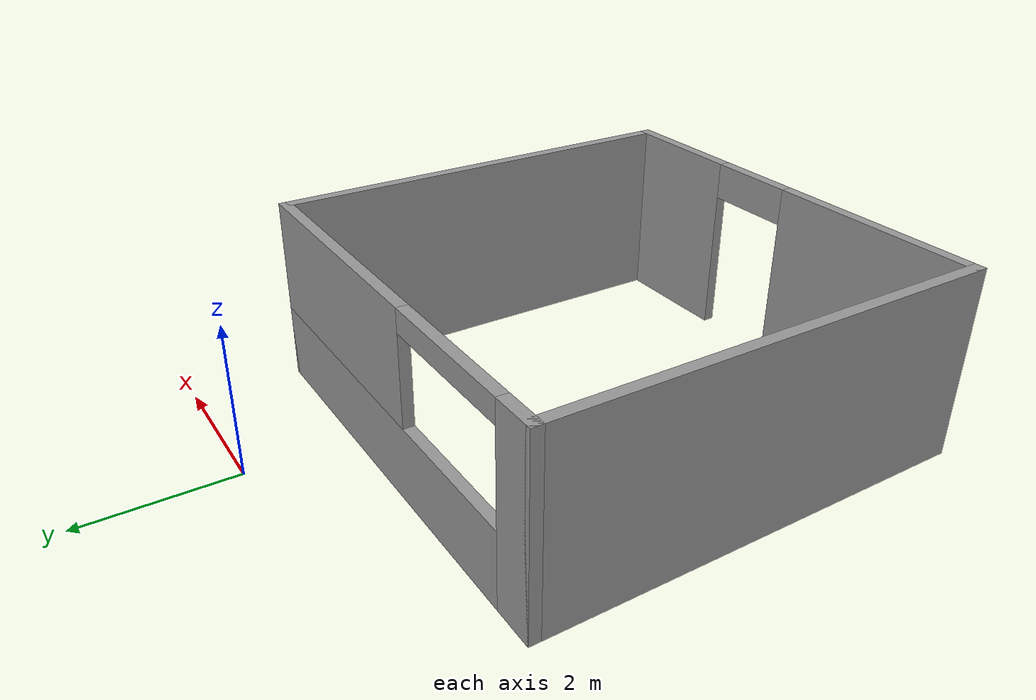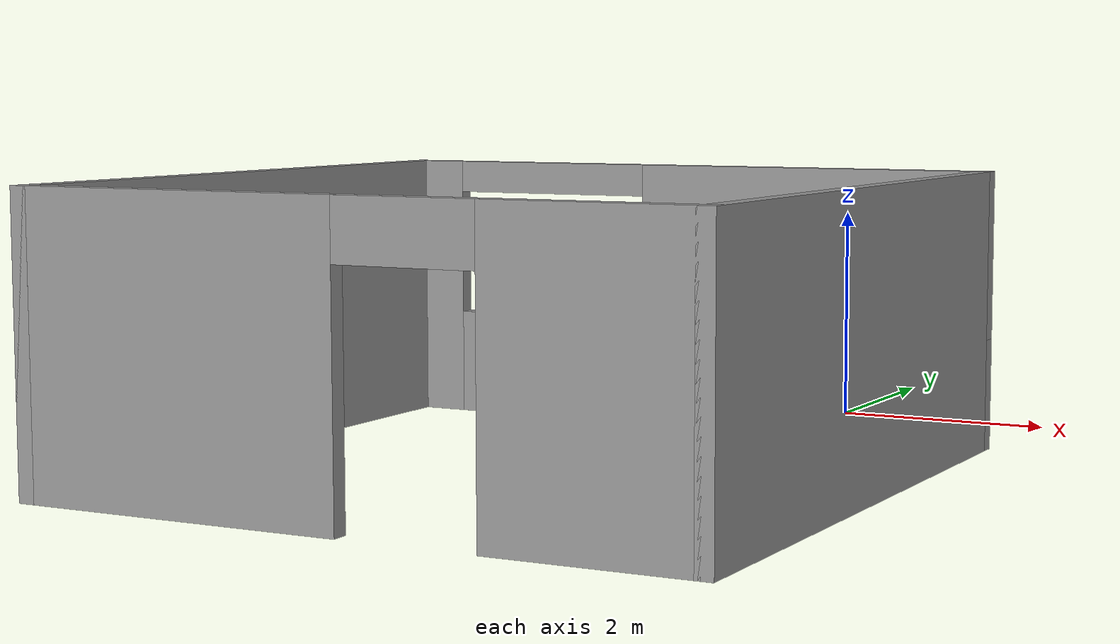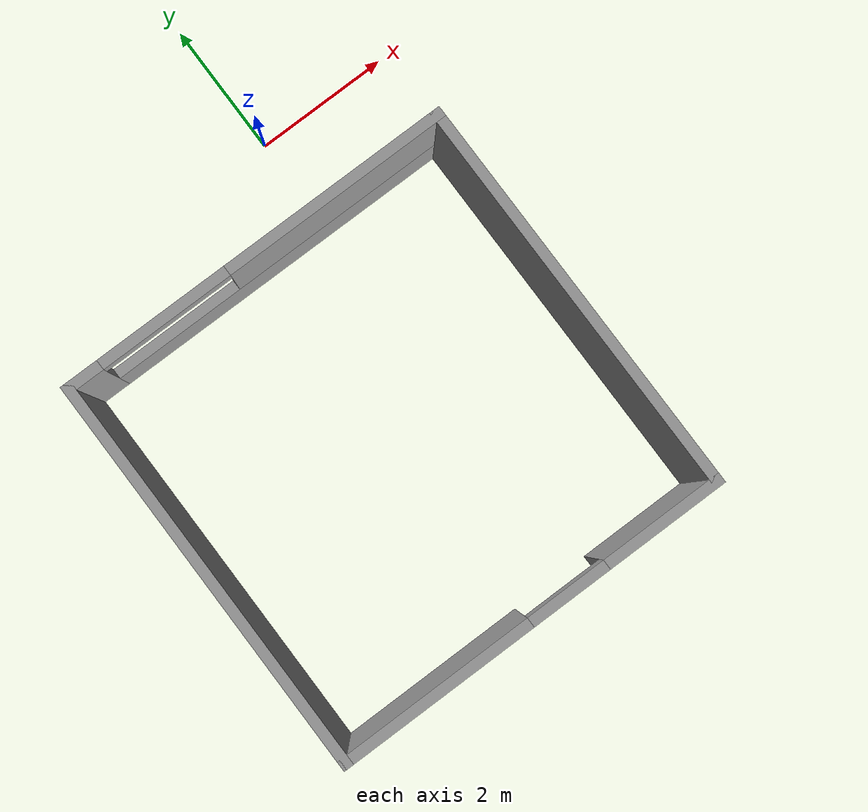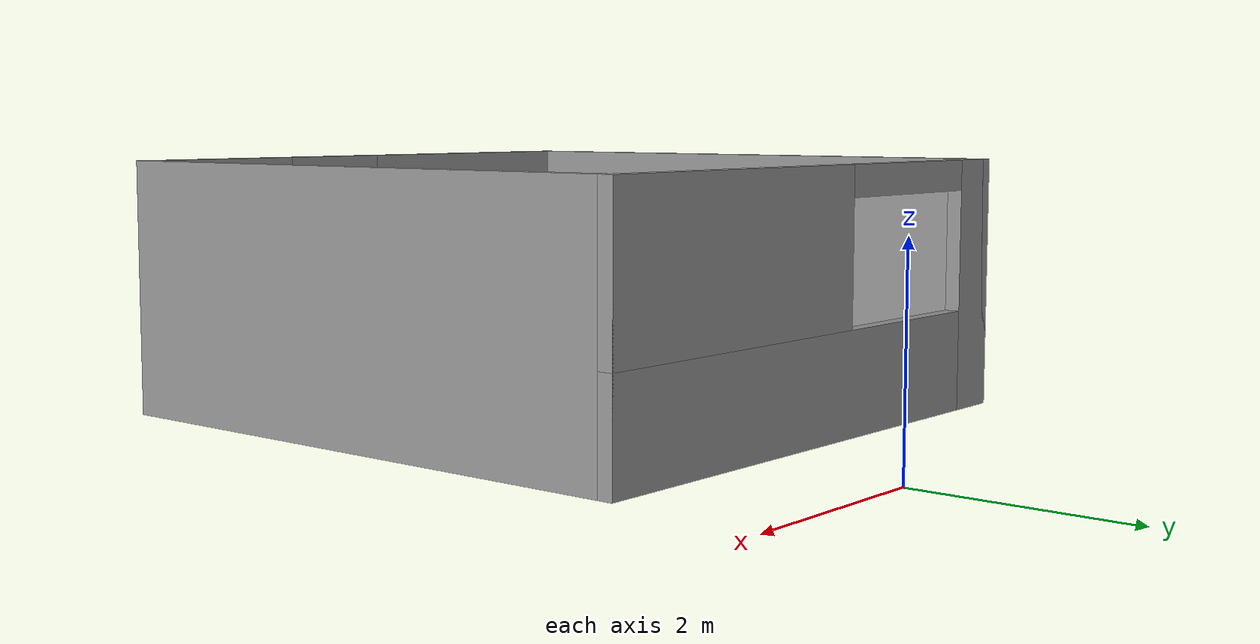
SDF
<?xml version='1.0'?>
<sdf version='1.6'>
  <model name='patient_room'>
    <pose frame=''>-1.075 -3.707 0 0 -0 0</pose>
    <link name='Wall_26'>
      <pose frame=''>-0 2.218 0 0 -0 0</pose>
      <visual name='Wall_26_Visual_0'>
        <pose frame=''>-2.7125 0 1.25 0 -0 0</pose>
        <geometry>
          <box>
            <size>0.575 0.15 2.5</size>
          </box>
        </geometry>
        <material>
          <script>
            <uri>file://media/materials/scripts/gazebo.material</uri>
            <name>Gazebo/Grey</name>
          </script>
          <ambient>1 1 1 1</ambient>
        </material>
        <meta>
          <layer>0</layer>
        </meta>
      </visual>
      <collision name='Wall_26_Collision_0'>
        <geometry>
          <box>
            <size>0.575 0.15 2.5</size>
          </box>
        </geometry>
        <pose frame=''>-2.7125 0 1.25 0 -0 0</pose>
      </collision>
      <visual name='Wall_26_Visual_1'>
        <pose frame=''>0.2875 0 0.5 0 -0 0</pose>
        <geometry>
          <box>
            <size>5.425 0.15 1</size>
          </box>
        </geometry>
        <material>
          <script>
            <uri>file://media/materials/scripts/gazebo.material</uri>
            <name>Gazebo/Grey</name>
          </script>
          <ambient>1 1 1 1</ambient>
        </material>
        <meta>
          <layer>0</layer>
        </meta>
      </visual>
      <collision name='Wall_26_Collision_1'>
        <geometry>
          <box>
            <size>5.425 0.15 1</size>
          </box>
        </geometry>
        <pose frame=''>0.2875 0 0.5 0 -0 0</pose>
      </collision>
      <visual name='Wall_26_Visual_2'>
        <pose frame=''>1.2875 0 1.75 0 -0 0</pose>
        <geometry>
          <box>
            <size>3.425 0.15 1.5</size>
          </box>
        </geometry>
        <material>
          <script>
            <uri>file://media/materials/scripts/gazebo.material</uri>
            <name>Gazebo/Grey</name>
          </script>
          <ambient>1 1 1 1</ambient>
        </material>
        <meta>
          <layer>0</layer>
        </meta>
      </visual>
      <collision name='Wall_26_Collision_2'>
        <geometry>
          <box>
            <size>3.425 0.15 1.5</size>
          </box>
        </geometry>
        <pose frame=''>1.2875 0 1.75 0 -0 0</pose>
      </collision>
      <visual name='Wall_26_Visual_3'>
        <pose frame=''>-1.425 0 2.35 0 -0 0</pose>
        <geometry>
          <box>
            <size>2 0.15 0.3</size>
          </box>
        </geometry>
        <material>
          <script>
            <uri>file://media/materials/scripts/gazebo.material</uri>
            <name>Gazebo/Grey</name>
          </script>
          <ambient>1 1 1 1</ambient>
        </material>
        <meta>
          <layer>0</layer>
        </meta>
      </visual>
      <collision name='Wall_26_Collision_3'>
        <geometry>
          <box>
            <size>2 0.15 0.3</size>
          </box>
        </geometry>
        <pose frame=''>-1.425 0 2.35 0 -0 0</pose>
      </collision>
    </link>
    <link name='Wall_28'>
      <collision name='Wall_28_Collision'>
        <geometry>
          <box>
            <size>6 0.15 2.5</size>
          </box>
        </geometry>
        <pose frame=''>0 0 1.25 0 -0 0</pose>
      </collision>
      <visual name='Wall_28_Visual'>
        <pose frame=''>0 0 1.25 0 -0 0</pose>
        <geometry>
          <box>
            <size>6 0.15 2.5</size>
          </box>
        </geometry>
        <material>
          <script>
            <uri>file://media/materials/scripts/gazebo.material</uri>
            <name>Gazebo/Grey</name>
          </script>
          <ambient>1 1 1 1</ambient>
        </material>
        <meta>
          <layer>0</layer>
        </meta>
      </visual>
      <pose frame=''>-2.925 -0.707 0 0 -0 -1.5708</pose>
    </link>
    <link name='Wall_29'>
      <pose frame=''>-0 -3.632 0 0 -0 0</pose>
      <visual name='Wall_29_Visual_0'>
        <pose frame=''>-1.5125 0 1.25 0 -0 0</pose>
        <geometry>
          <box>
            <size>2.975 0.15 2.5</size>
          </box>
        </geometry>
        <material>
          <script>
            <uri>file://media/materials/scripts/gazebo.material</uri>
            <name>Gazebo/Grey</name>
          </script>
          <ambient>1 1 1 1</ambient>
        </material>
        <meta>
          <layer>0</layer>
        </meta>
      </visual>
      <collision name='Wall_29_Collision_0'>
        <geometry>
          <box>
            <size>2.975 0.15 2.5</size>
          </box>
        </geometry>
        <pose frame=''>-1.5125 0 1.25 0 -0 0</pose>
      </collision>
      <visual name='Wall_29_Visual_1'>
        <pose frame=''>2.0875 0 1.25 0 -0 0</pose>
        <geometry>
          <box>
            <size>1.825 0.15 2.5</size>
          </box>
        </geometry>
        <material>
          <script>
            <uri>file://media/materials/scripts/gazebo.material</uri>
            <name>Gazebo/Grey</name>
          </script>
          <ambient>1 1 1 1</ambient>
        </material>
        <meta>
          <layer>0</layer>
        </meta>
      </visual>
      <collision name='Wall_29_Collision_1'>
        <geometry>
          <box>
            <size>1.825 0.15 2.5</size>
          </box>
        </geometry>
        <pose frame=''>2.0875 0 1.25 0 -0 0</pose>
      </collision>
      <visual name='Wall_29_Visual_2'>
        <pose frame=''>0.575 0 2.25 0 -0 0</pose>
        <geometry>
          <box>
            <size>1.2 0.15 0.5</size>
          </box>
        </geometry>
        <material>
          <script>
            <uri>file://media/materials/scripts/gazebo.material</uri>
            <name>Gazebo/Grey</name>
          </script>
          <ambient>1 1 1 1</ambient>
        </material>
        <meta>
          <layer>0</layer>
        </meta>
      </visual>
      <collision name='Wall_29_Collision_2'>
        <geometry>
          <box>
            <size>1.2 0.15 0.5</size>
          </box>
        </geometry>
        <pose frame=''>0.575 0 2.25 0 -0 0</pose>
      </collision>
    </link>
    <link name='Wall_30'>
      <collision name='Wall_30_Collision'>
        <geometry>
          <box>
            <size>6 0.15 2.5</size>
          </box>
        </geometry>
        <pose frame=''>0 0 1.25 0 -0 0</pose>
      </collision>
      <visual name='Wall_30_Visual'>
        <pose frame=''>0 0 1.25 0 -0 0</pose>
        <geometry>
          <box>
            <size>6 0.15 2.5</size>
          </box>
        </geometry>
        <material>
          <script>
            <uri>file://media/materials/scripts/gazebo.material</uri>
            <name>Gazebo/Grey</name>
          </script>
          <ambient>1 1 1 1</ambient>
        </material>
        <meta>
          <layer>0</layer>
        </meta>
      </visual>
      <pose frame=''>2.925 -0.707 0 0 -0 1.5708</pose>
    </link>
    <static>1</static>
  </model>
</sdf>
